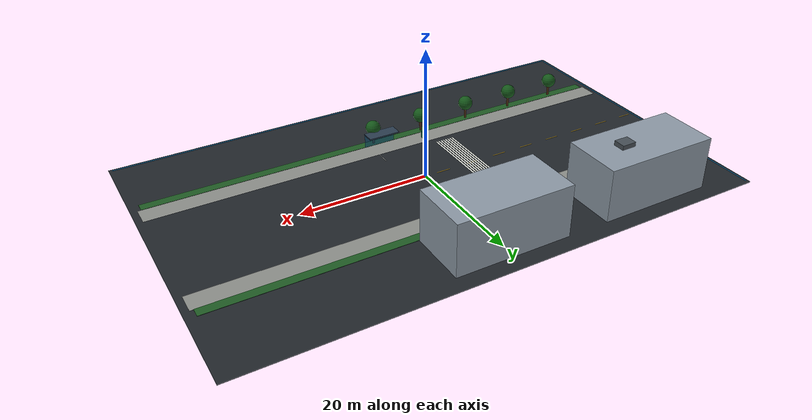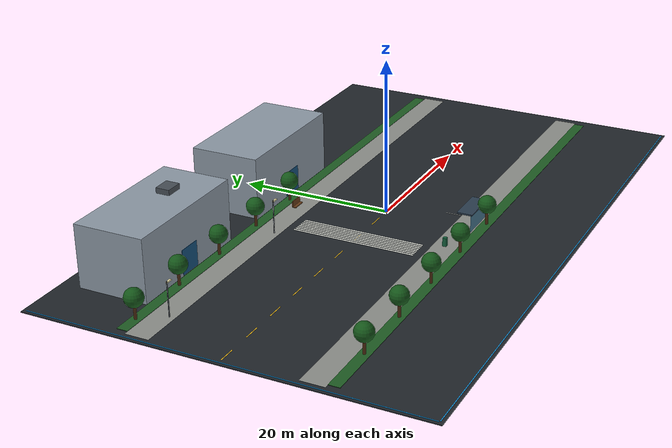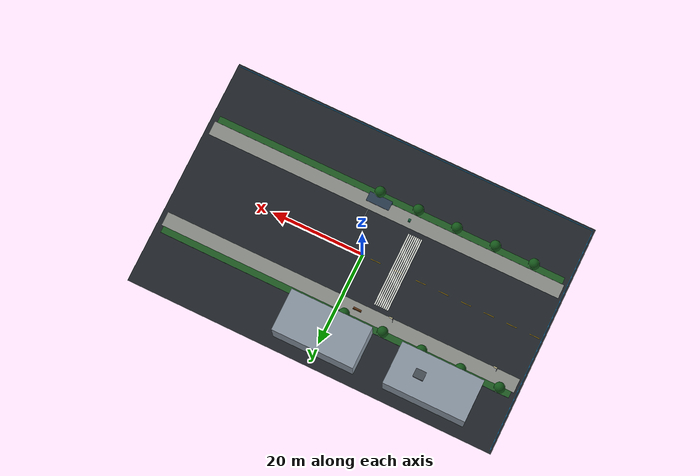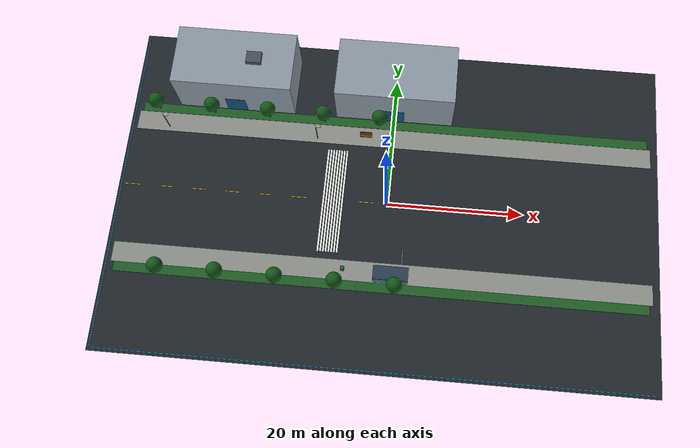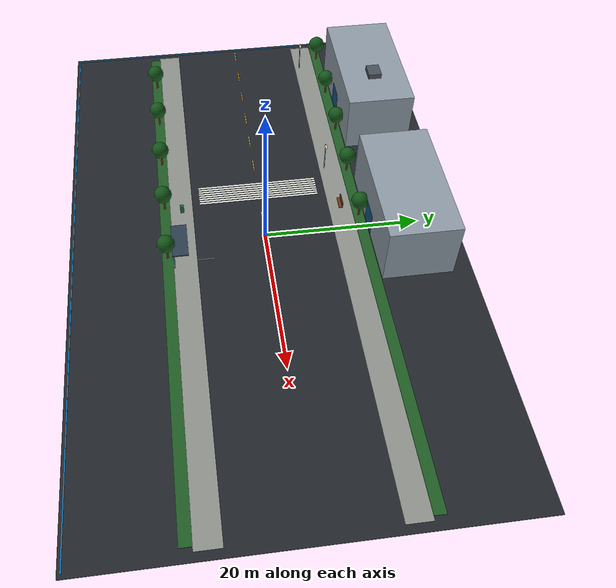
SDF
<sdf version="1.9">
 <world name="sanitation_campus_medium">
  <model name="asphalt_ground">
   <static>true</static>
   <pose>0 0 -0.05 0 0 0</pose>
   <link name="link">
    <collision name="collision"><geometry><box><size>80.0 50.0 0.1</size></box></geometry></collision>
    <visual name="visual">
     <geometry><box><size>80.0 50.0 0.1</size></box></geometry>
     <material>
      <ambient>0.13 0.15 0.17 1</ambient>
      <diffuse>0.13 0.15 0.17 1</diffuse>
      <specular>0.04 0.04 0.04 1</specular>
     </material>
    </visual>
   </link>
  </model>
  <model name="north_sidewalk">
   <static>true</static>
   <pose>0 10.5 0.001 0 0 0</pose>
   <link name="link">
    <visual name="visual">
     <geometry><box><size>78.0 3.0 0.002</size></box></geometry>
     <material>
      <ambient>0.55 0.56 0.54 1</ambient>
      <diffuse>0.55 0.56 0.54 1</diffuse>
      <specular>0.04 0.04 0.04 1</specular>
     </material>
    </visual>
   </link>
  </model>
  <model name="south_sidewalk">
   <static>true</static>
   <pose>0 -10.5 0.001 0 0 0</pose>
   <link name="link">
    <visual name="visual">
     <geometry><box><size>78.0 3.0 0.002</size></box></geometry>
     <material>
      <ambient>0.55 0.56 0.54 1</ambient>
      <diffuse>0.55 0.56 0.54 1</diffuse>
      <specular>0.04 0.04 0.04 1</specular>
     </material>
    </visual>
   </link>
  </model>
  <model name="north_green_verge">
   <static>true</static>
   <pose>0 12.7 0.03 0 0 0</pose>
   <link name="link">
    <visual name="visual">
     <geometry><box><size>77.0 1.4 0.06</size></box></geometry>
     <material>
      <ambient>0.12 0.36 0.14 1</ambient>
      <diffuse>0.12 0.36 0.14 1</diffuse>
      <specular>0.04 0.04 0.04 1</specular>
     </material>
    </visual>
   </link>
  </model>
  <model name="south_green_verge">
   <static>true</static>
   <pose>0 -12.7 0.03 0 0 0</pose>
   <link name="link">
    <visual name="visual">
     <geometry><box><size>77.0 1.4 0.06</size></box></geometry>
     <material>
      <ambient>0.12 0.36 0.14 1</ambient>
      <diffuse>0.12 0.36 0.14 1</diffuse>
      <specular>0.04 0.04 0.04 1</specular>
     </material>
    </visual>
   </link>
  </model>
  <model name="center_dash_00">
   <static>true</static>
   <pose>-38.0 0 0.012 0 0 0</pose>
   <link name="link">
    <visual name="visual">
     <geometry><box><size>2.2 0.12 0.012</size></box></geometry>
     <material>
      <ambient>0.95 0.74 0.10 1</ambient>
      <diffuse>0.95 0.74 0.10 1</diffuse>
      <specular>0.04 0.04 0.04 1</specular>
     </material>
    </visual>
   </link>
  </model>
  <model name="center_dash_01">
   <static>true</static>
   <pose>-33.0 0 0.012 0 0 0</pose>
   <link name="link">
    <visual name="visual">
     <geometry><box><size>2.2 0.12 0.012</size></box></geometry>
     <material>
      <ambient>0.95 0.74 0.10 1</ambient>
      <diffuse>0.95 0.74 0.10 1</diffuse>
      <specular>0.04 0.04 0.04 1</specular>
     </material>
    </visual>
   </link>
  </model>
  <model name="center_dash_02">
   <static>true</static>
   <pose>-28.0 0 0.012 0 0 0</pose>
   <link name="link">
    <visual name="visual">
     <geometry><box><size>2.2 0.12 0.012</size></box></geometry>
     <material>
      <ambient>0.95 0.74 0.10 1</ambient>
      <diffuse>0.95 0.74 0.10 1</diffuse>
      <specular>0.04 0.04 0.04 1</specular>
     </material>
    </visual>
   </link>
  </model>
  <model name="center_dash_03">
   <static>true</static>
   <pose>-23.0 0 0.012 0 0 0</pose>
   <link name="link">
    <visual name="visual">
     <geometry><box><size>2.2 0.12 0.012</size></box></geometry>
     <material>
      <ambient>0.95 0.74 0.10 1</ambient>
      <diffuse>0.95 0.74 0.10 1</diffuse>
      <specular>0.04 0.04 0.04 1</specular>
     </material>
    </visual>
   </link>
  </model>
  <model name="center_dash_04">
   <static>true</static>
   <pose>-18.0 0 0.012 0 0 0</pose>
   <link name="link">
    <visual name="visual">
     <geometry><box><size>2.2 0.12 0.012</size></box></geometry>
     <material>
      <ambient>0.95 0.74 0.10 1</ambient>
      <diffuse>0.95 0.74 0.10 1</diffuse>
      <specular>0.04 0.04 0.04 1</specular>
     </material>
    </visual>
   </link>
  </model>
  <model name="center_dash_05">
   <static>true</static>
   <pose>-13.0 0 0.012 0 0 0</pose>
   <link name="link">
    <visual name="visual">
     <geometry><box><size>2.2 0.12 0.012</size></box></geometry>
     <material>
      <ambient>0.95 0.74 0.10 1</ambient>
      <diffuse>0.95 0.74 0.10 1</diffuse>
      <specular>0.04 0.04 0.04 1</specular>
     </material>
    </visual>
   </link>
  </model>
  <model name="center_dash_06">
   <static>true</static>
   <pose>-8.0 0 0.012 0 0 0</pose>
   <link name="link">
    <visual name="visual">
     <geometry><box><size>2.2 0.12 0.012</size></box></geometry>
     <material>
      <ambient>0.95 0.74 0.10 1</ambient>
      <diffuse>0.95 0.74 0.10 1</diffuse>
      <specular>0.04 0.04 0.04 1</specular>
     </material>
    </visual>
   </link>
  </model>
  <model name="center_dash_07">
   <static>true</static>
   <pose>-3.0 0 0.012 0 0 0</pose>
   <link name="link">
    <visual name="visual">
     <geometry><box><size>2.2 0.12 0.012</size></box></geometry>
     <material>
      <ambient>0.95 0.74 0.10 1</ambient>
      <diffuse>0.95 0.74 0.10 1</diffuse>
      <specular>0.04 0.04 0.04 1</specular>
     </material>
    </visual>
   </link>
  </model>
  <model name="center_dash_08">
   <static>true</static>
   <pose>2.0 0 0.012 0 0 0</pose>
   <link name="link">
    <visual name="visual">
     <geometry><box><size>2.2 0.12 0.012</size></box></geometry>
     <material>
      <ambient>0.95 0.74 0.10 1</ambient>
      <diffuse>0.95 0.74 0.10 1</diffuse>
      <specular>0.04 0.04 0.04 1</specular>
     </material>
    </visual>
   </link>
  </model>
  <model name="crosswalk_00">
   <static>true</static>
   <pose>-9.4 0 0.014 0 0 0</pose>
   <link name="link">
    <visual name="visual">
     <geometry><box><size>0.28 16.0 0.014</size></box></geometry>
     <material>
      <ambient>0.92 0.93 0.90 1</ambient>
      <diffuse>0.92 0.93 0.90 1</diffuse>
      <specular>0.04 0.04 0.04 1</specular>
     </material>
    </visual>
   </link>
  </model>
  <model name="crosswalk_01">
   <static>true</static>
   <pose>-9.0 0 0.014 0 0 0</pose>
   <link name="link">
    <visual name="visual">
     <geometry><box><size>0.28 16.0 0.014</size></box></geometry>
     <material>
      <ambient>0.92 0.93 0.90 1</ambient>
      <diffuse>0.92 0.93 0.90 1</diffuse>
      <specular>0.04 0.04 0.04 1</specular>
     </material>
    </visual>
   </link>
  </model>
  <model name="crosswalk_02">
   <static>true</static>
   <pose>-8.6 0 0.014 0 0 0</pose>
   <link name="link">
    <visual name="visual">
     <geometry><box><size>0.28 16.0 0.014</size></box></geometry>
     <material>
      <ambient>0.92 0.93 0.90 1</ambient>
      <diffuse>0.92 0.93 0.90 1</diffuse>
      <specular>0.04 0.04 0.04 1</specular>
     </material>
    </visual>
   </link>
  </model>
  <model name="crosswalk_03">
   <static>true</static>
   <pose>-8.2 0 0.014 0 0 0</pose>
   <link name="link">
    <visual name="visual">
     <geometry><box><size>0.28 16.0 0.014</size></box></geometry>
     <material>
      <ambient>0.92 0.93 0.90 1</ambient>
      <diffuse>0.92 0.93 0.90 1</diffuse>
      <specular>0.04 0.04 0.04 1</specular>
     </material>
    </visual>
   </link>
  </model>
  <model name="crosswalk_04">
   <static>true</static>
   <pose>-7.8 0 0.014 0 0 0</pose>
   <link name="link">
    <visual name="visual">
     <geometry><box><size>0.28 16.0 0.014</size></box></geometry>
     <material>
      <ambient>0.92 0.93 0.90 1</ambient>
      <diffuse>0.92 0.93 0.90 1</diffuse>
      <specular>0.04 0.04 0.04 1</specular>
     </material>
    </visual>
   </link>
  </model>
  <model name="crosswalk_05">
   <static>true</static>
   <pose>-7.4 0 0.014 0 0 0</pose>
   <link name="link">
    <visual name="visual">
     <geometry><box><size>0.28 16.0 0.014</size></box></geometry>
     <material>
      <ambient>0.92 0.93 0.90 1</ambient>
      <diffuse>0.92 0.93 0.90 1</diffuse>
      <specular>0.04 0.04 0.04 1</specular>
     </material>
    </visual>
   </link>
  </model>
  <model name="crosswalk_06">
   <static>true</static>
   <pose>-7.0 0 0.014 0 0 0</pose>
   <link name="link">
    <visual name="visual">
     <geometry><box><size>0.28 16.0 0.014</size></box></geometry>
     <material>
      <ambient>0.92 0.93 0.90 1</ambient>
      <diffuse>0.92 0.93 0.90 1</diffuse>
      <specular>0.04 0.04 0.04 1</specular>
     </material>
    </visual>
   </link>
  </model>
  <model name="crosswalk_07">
   <static>true</static>
   <pose>-6.6 0 0.014 0 0 0</pose>
   <link name="link">
    <visual name="visual">
     <geometry><box><size>0.28 16.0 0.014</size></box></geometry>
     <material>
      <ambient>0.92 0.93 0.90 1</ambient>
      <diffuse>0.92 0.93 0.90 1</diffuse>
      <specular>0.04 0.04 0.04 1</specular>
     </material>
    </visual>
   </link>
  </model>
  <model name="parking_line_-1_0">
   <static>true</static>
   <pose>3.0 -7.9 0.013 0 0 0</pose>
   <link name="link">
    <visual name="visual">
     <geometry><box><size>0.08 2.2 0.012</size></box></geometry>
     <material>
      <ambient>0.86 0.88 0.86 1</ambient>
      <diffuse>0.86 0.88 0.86 1</diffuse>
      <specular>0.04 0.04 0.04 1</specular>
     </material>
    </visual>
   </link>
  </model>
  <model name="building_north_0">
   <static>true</static>
   <pose>-24.0 18.0 4.0 0 0 0</pose>
   <link name="link">
    <collision name="collision"><geometry><box><size>17.6 9.0 8.0</size></box></geometry></collision>
    <visual name="visual">
     <geometry><box><size>17.6 9.0 8.0</size></box></geometry>
     <material>
      <ambient>0.55 0.60 0.65 1</ambient>
      <diffuse>0.55 0.60 0.65 1</diffuse>
      <specular>0.04 0.04 0.04 1</specular>
     </material>
    </visual>
   </link>
  </model>
  <model name="glass_entry_north_0">
   <static>true</static>
   <pose>-24.0 13.49 1.7 0 0 0</pose>
   <link name="link">
    <visual name="visual">
     <geometry><box><size>3.0 0.08 3.2</size></box></geometry>
     <material>
      <ambient>0.08 0.31 0.48 1</ambient>
      <diffuse>0.08 0.31 0.48 1</diffuse>
      <specular>0.04 0.04 0.04 1</specular>
     </material>
    </visual>
   </link>
  </model>
  <model name="roof_unit_north_0">
   <static>true</static>
   <pose>-21.0 18.0 8.35 0 0 0</pose>
   <link name="link">
    <collision name="collision"><geometry><box><size>2.2 1.8 0.7</size></box></geometry></collision>
    <visual name="visual">
     <geometry><box><size>2.2 1.8 0.7</size></box></geometry>
     <material>
      <ambient>0.28 0.31 0.34 1</ambient>
      <diffuse>0.28 0.31 0.34 1</diffuse>
      <specular>0.04 0.04 0.04 1</specular>
     </material>
    </visual>
   </link>
  </model>
  <model name="building_north_1">
   <static>true</static>
   <pose>0.0 18.0 4.0 0 0 0</pose>
   <link name="link">
    <collision name="collision"><geometry><box><size>17.6 9.0 8.0</size></box></geometry></collision>
    <visual name="visual">
     <geometry><box><size>17.6 9.0 8.0</size></box></geometry>
     <material>
      <ambient>0.55 0.60 0.65 1</ambient>
      <diffuse>0.55 0.60 0.65 1</diffuse>
      <specular>0.04 0.04 0.04 1</specular>
     </material>
    </visual>
   </link>
  </model>
  <model name="glass_entry_north_1">
   <static>true</static>
   <pose>0.0 13.49 1.7 0 0 0</pose>
   <link name="link">
    <visual name="visual">
     <geometry><box><size>3.0 0.08 3.2</size></box></geometry>
     <material>
      <ambient>0.08 0.31 0.48 1</ambient>
      <diffuse>0.08 0.31 0.48 1</diffuse>
      <specular>0.04 0.04 0.04 1</specular>
     </material>
    </visual>
   </link>
  </model>
  <model name="tree_00">
   <static>true</static>
   <pose>-36.0 12.7 0 0 0 0</pose>
   <link name="link">
    <collision name="trunk_collision">
     <geometry><cylinder><radius>0.18</radius><length>2.2</length></cylinder></geometry>
     <pose>0 0 1.1 0 0 0</pose>
    </collision>
    <visual name="trunk">
     <pose>0 0 1.1 0 0 0</pose>
     <geometry><cylinder><radius>0.18</radius><length>2.2</length></cylinder></geometry>
     <material>
      <ambient>0.30 0.17 0.07 1</ambient>
      <diffuse>0.30 0.17 0.07 1</diffuse>
      <specular>0.04 0.04 0.04 1</specular>
     </material>
    </visual>
    <visual name="crown">
     <pose>0 0 2.7 0 0 0</pose>
     <geometry><sphere><radius>1.15</radius></sphere></geometry>
     <material>
      <ambient>0.08 0.34 0.10 1</ambient>
      <diffuse>0.08 0.34 0.10 1</diffuse>
      <specular>0.04 0.04 0.04 1</specular>
     </material>
    </visual>
   </link>
  </model>
  <model name="tree_01">
   <static>true</static>
   <pose>-31.764705882352942 -12.7 0 0 0 0</pose>
   <link name="link">
    <collision name="trunk_collision">
     <geometry><cylinder><radius>0.18</radius><length>2.2</length></cylinder></geometry>
     <pose>0 0 1.1 0 0 0</pose>
    </collision>
    <visual name="trunk">
     <pose>0 0 1.1 0 0 0</pose>
     <geometry><cylinder><radius>0.18</radius><length>2.2</length></cylinder></geometry>
     <material>
      <ambient>0.30 0.17 0.07 1</ambient>
      <diffuse>0.30 0.17 0.07 1</diffuse>
      <specular>0.04 0.04 0.04 1</specular>
     </material>
    </visual>
    <visual name="crown">
     <pose>0 0 2.7 0 0 0</pose>
     <geometry><sphere><radius>1.15</radius></sphere></geometry>
     <material>
      <ambient>0.08 0.34 0.10 1</ambient>
      <diffuse>0.08 0.34 0.10 1</diffuse>
      <specular>0.04 0.04 0.04 1</specular>
     </material>
    </visual>
   </link>
  </model>
  <model name="tree_02">
   <static>true</static>
   <pose>-27.529411764705884 12.7 0 0 0 0</pose>
   <link name="link">
    <collision name="trunk_collision">
     <geometry><cylinder><radius>0.18</radius><length>2.2</length></cylinder></geometry>
     <pose>0 0 1.1 0 0 0</pose>
    </collision>
    <visual name="trunk">
     <pose>0 0 1.1 0 0 0</pose>
     <geometry><cylinder><radius>0.18</radius><length>2.2</length></cylinder></geometry>
     <material>
      <ambient>0.30 0.17 0.07 1</ambient>
      <diffuse>0.30 0.17 0.07 1</diffuse>
      <specular>0.04 0.04 0.04 1</specular>
     </material>
    </visual>
    <visual name="crown">
     <pose>0 0 2.7 0 0 0</pose>
     <geometry><sphere><radius>1.15</radius></sphere></geometry>
     <material>
      <ambient>0.08 0.34 0.10 1</ambient>
      <diffuse>0.08 0.34 0.10 1</diffuse>
      <specular>0.04 0.04 0.04 1</specular>
     </material>
    </visual>
   </link>
  </model>
  <model name="tree_03">
   <static>true</static>
   <pose>-23.294117647058822 -12.7 0 0 0 0</pose>
   <link name="link">
    <collision name="trunk_collision">
     <geometry><cylinder><radius>0.18</radius><length>2.2</length></cylinder></geometry>
     <pose>0 0 1.1 0 0 0</pose>
    </collision>
    <visual name="trunk">
     <pose>0 0 1.1 0 0 0</pose>
     <geometry><cylinder><radius>0.18</radius><length>2.2</length></cylinder></geometry>
     <material>
      <ambient>0.30 0.17 0.07 1</ambient>
      <diffuse>0.30 0.17 0.07 1</diffuse>
      <specular>0.04 0.04 0.04 1</specular>
     </material>
    </visual>
    <visual name="crown">
     <pose>0 0 2.7 0 0 0</pose>
     <geometry><sphere><radius>1.15</radius></sphere></geometry>
     <material>
      <ambient>0.08 0.34 0.10 1</ambient>
      <diffuse>0.08 0.34 0.10 1</diffuse>
      <specular>0.04 0.04 0.04 1</specular>
     </material>
    </visual>
   </link>
  </model>
  <model name="tree_04">
   <static>true</static>
   <pose>-19.058823529411764 12.7 0 0 0 0</pose>
   <link name="link">
    <collision name="trunk_collision">
     <geometry><cylinder><radius>0.18</radius><length>2.2</length></cylinder></geometry>
     <pose>0 0 1.1 0 0 0</pose>
    </collision>
    <visual name="trunk">
     <pose>0 0 1.1 0 0 0</pose>
     <geometry><cylinder><radius>0.18</radius><length>2.2</length></cylinder></geometry>
     <material>
      <ambient>0.30 0.17 0.07 1</ambient>
      <diffuse>0.30 0.17 0.07 1</diffuse>
      <specular>0.04 0.04 0.04 1</specular>
     </material>
    </visual>
    <visual name="crown">
     <pose>0 0 2.7 0 0 0</pose>
     <geometry><sphere><radius>1.15</radius></sphere></geometry>
     <material>
      <ambient>0.08 0.34 0.10 1</ambient>
      <diffuse>0.08 0.34 0.10 1</diffuse>
      <specular>0.04 0.04 0.04 1</specular>
     </material>
    </visual>
   </link>
  </model>
  <model name="tree_05">
   <static>true</static>
   <pose>-14.823529411764707 -12.7 0 0 0 0</pose>
   <link name="link">
    <collision name="trunk_collision">
     <geometry><cylinder><radius>0.18</radius><length>2.2</length></cylinder></geometry>
     <pose>0 0 1.1 0 0 0</pose>
    </collision>
    <visual name="trunk">
     <pose>0 0 1.1 0 0 0</pose>
     <geometry><cylinder><radius>0.18</radius><length>2.2</length></cylinder></geometry>
     <material>
      <ambient>0.30 0.17 0.07 1</ambient>
      <diffuse>0.30 0.17 0.07 1</diffuse>
      <specular>0.04 0.04 0.04 1</specular>
     </material>
    </visual>
    <visual name="crown">
     <pose>0 0 2.7 0 0 0</pose>
     <geometry><sphere><radius>1.15</radius></sphere></geometry>
     <material>
      <ambient>0.08 0.34 0.10 1</ambient>
      <diffuse>0.08 0.34 0.10 1</diffuse>
      <specular>0.04 0.04 0.04 1</specular>
     </material>
    </visual>
   </link>
  </model>
  <model name="tree_06">
   <static>true</static>
   <pose>-10.588235294117645 12.7 0 0 0 0</pose>
   <link name="link">
    <collision name="trunk_collision">
     <geometry><cylinder><radius>0.18</radius><length>2.2</length></cylinder></geometry>
     <pose>0 0 1.1 0 0 0</pose>
    </collision>
    <visual name="trunk">
     <pose>0 0 1.1 0 0 0</pose>
     <geometry><cylinder><radius>0.18</radius><length>2.2</length></cylinder></geometry>
     <material>
      <ambient>0.30 0.17 0.07 1</ambient>
      <diffuse>0.30 0.17 0.07 1</diffuse>
      <specular>0.04 0.04 0.04 1</specular>
     </material>
    </visual>
    <visual name="crown">
     <pose>0 0 2.7 0 0 0</pose>
     <geometry><sphere><radius>1.15</radius></sphere></geometry>
     <material>
      <ambient>0.08 0.34 0.10 1</ambient>
      <diffuse>0.08 0.34 0.10 1</diffuse>
      <specular>0.04 0.04 0.04 1</specular>
     </material>
    </visual>
   </link>
  </model>
  <model name="tree_07">
   <static>true</static>
   <pose>-6.3529411764705905 -12.7 0 0 0 0</pose>
   <link name="link">
    <collision name="trunk_collision">
     <geometry><cylinder><radius>0.18</radius><length>2.2</length></cylinder></geometry>
     <pose>0 0 1.1 0 0 0</pose>
    </collision>
    <visual name="trunk">
     <pose>0 0 1.1 0 0 0</pose>
     <geometry><cylinder><radius>0.18</radius><length>2.2</length></cylinder></geometry>
     <material>
      <ambient>0.30 0.17 0.07 1</ambient>
      <diffuse>0.30 0.17 0.07 1</diffuse>
      <specular>0.04 0.04 0.04 1</specular>
     </material>
    </visual>
    <visual name="crown">
     <pose>0 0 2.7 0 0 0</pose>
     <geometry><sphere><radius>1.15</radius></sphere></geometry>
     <material>
      <ambient>0.08 0.34 0.10 1</ambient>
      <diffuse>0.08 0.34 0.10 1</diffuse>
      <specular>0.04 0.04 0.04 1</specular>
     </material>
    </visual>
   </link>
  </model>
  <model name="tree_08">
   <static>true</static>
   <pose>-2.117647058823529 12.7 0 0 0 0</pose>
   <link name="link">
    <collision name="trunk_collision">
     <geometry><cylinder><radius>0.18</radius><length>2.2</length></cylinder></geometry>
     <pose>0 0 1.1 0 0 0</pose>
    </collision>
    <visual name="trunk">
     <pose>0 0 1.1 0 0 0</pose>
     <geometry><cylinder><radius>0.18</radius><length>2.2</length></cylinder></geometry>
     <material>
      <ambient>0.30 0.17 0.07 1</ambient>
      <diffuse>0.30 0.17 0.07 1</diffuse>
      <specular>0.04 0.04 0.04 1</specular>
     </material>
    </visual>
    <visual name="crown">
     <pose>0 0 2.7 0 0 0</pose>
     <geometry><sphere><radius>1.15</radius></sphere></geometry>
     <material>
      <ambient>0.08 0.34 0.10 1</ambient>
      <diffuse>0.08 0.34 0.10 1</diffuse>
      <specular>0.04 0.04 0.04 1</specular>
     </material>
    </visual>
   </link>
  </model>
  <model name="tree_09">
   <static>true</static>
   <pose>2.117647058823529 -12.7 0 0 0 0</pose>
   <link name="link">
    <collision name="trunk_collision">
     <geometry><cylinder><radius>0.18</radius><length>2.2</length></cylinder></geometry>
     <pose>0 0 1.1 0 0 0</pose>
    </collision>
    <visual name="trunk">
     <pose>0 0 1.1 0 0 0</pose>
     <geometry><cylinder><radius>0.18</radius><length>2.2</length></cylinder></geometry>
     <material>
      <ambient>0.30 0.17 0.07 1</ambient>
      <diffuse>0.30 0.17 0.07 1</diffuse>
      <specular>0.04 0.04 0.04 1</specular>
     </material>
    </visual>
    <visual name="crown">
     <pose>0 0 2.7 0 0 0</pose>
     <geometry><sphere><radius>1.15</radius></sphere></geometry>
     <material>
      <ambient>0.08 0.34 0.10 1</ambient>
      <diffuse>0.08 0.34 0.10 1</diffuse>
      <specular>0.04 0.04 0.04 1</specular>
     </material>
    </visual>
   </link>
  </model>
  <model name="lamp_post_00">
   <static>true</static>
   <pose>-34.0 9.7 2.2 0 0 0</pose>
   <link name="link">
    <collision name="collision">
     <geometry><cylinder><radius>0.07</radius><length>4.4</length></cylinder></geometry>
    </collision>
    <visual name="visual">
     <geometry><cylinder><radius>0.07</radius><length>4.4</length></cylinder></geometry>
     <material>
      <ambient>0.12 0.14 0.16 1</ambient>
      <diffuse>0.12 0.14 0.16 1</diffuse>
      <specular>0.04 0.04 0.04 1</specular>
     </material>
    </visual>
   </link>
  </model>
  <model name="lamp_head_00">
   <static>true</static>
   <pose>-33.65 9.7 4.25 0 0 0</pose>
   <link name="link">
    <visual name="visual">
     <geometry><box><size>0.75 0.22 0.16</size></box></geometry>
     <material>
      <ambient>0.92 0.88 0.66 1</ambient>
      <diffuse>0.92 0.88 0.66 1</diffuse>
      <specular>0.04 0.04 0.04 1</specular>
     </material>
    </visual>
   </link>
  </model>
  <model name="lamp_post_01">
   <static>true</static>
   <pose>-11.333333333333332 9.7 2.2 0 0 0</pose>
   <link name="link">
    <collision name="collision">
     <geometry><cylinder><radius>0.07</radius><length>4.4</length></cylinder></geometry>
    </collision>
    <visual name="visual">
     <geometry><cylinder><radius>0.07</radius><length>4.4</length></cylinder></geometry>
     <material>
      <ambient>0.12 0.14 0.16 1</ambient>
      <diffuse>0.12 0.14 0.16 1</diffuse>
      <specular>0.04 0.04 0.04 1</specular>
     </material>
    </visual>
   </link>
  </model>
  <model name="lamp_head_01">
   <static>true</static>
   <pose>-10.983333333333333 9.7 4.25 0 0 0</pose>
   <link name="link">
    <visual name="visual">
     <geometry><box><size>0.75 0.22 0.16</size></box></geometry>
     <material>
      <ambient>0.92 0.88 0.66 1</ambient>
      <diffuse>0.92 0.88 0.66 1</diffuse>
      <specular>0.04 0.04 0.04 1</specular>
     </material>
    </visual>
   </link>
  </model>
  <model name="bench_seat_0">
   <static>true</static>
   <pose>-4.0 10.5 0.55 0 0 0</pose>
   <link name="link">
    <collision name="collision"><geometry><box><size>1.8 0.48 0.12</size></box></geometry></collision>
    <visual name="visual">
     <geometry><box><size>1.8 0.48 0.12</size></box></geometry>
     <material>
      <ambient>0.40 0.23 0.09 1</ambient>
      <diffuse>0.40 0.23 0.09 1</diffuse>
      <specular>0.04 0.04 0.04 1</specular>
     </material>
    </visual>
   </link>
  </model>
  <model name="bench_back_0">
   <static>true</static>
   <pose>-4.0 10.72 0.95 0 0 0</pose>
   <link name="link">
    <collision name="collision"><geometry><box><size>1.8 0.1 0.75</size></box></geometry></collision>
    <visual name="visual">
     <geometry><box><size>1.8 0.1 0.75</size></box></geometry>
     <material>
      <ambient>0.40 0.23 0.09 1</ambient>
      <diffuse>0.40 0.23 0.09 1</diffuse>
      <specular>0.04 0.04 0.04 1</specular>
     </material>
    </visual>
   </link>
  </model>
  <model name="waste_bin_0">
   <static>true</static>
   <pose>-5.5 -10.4 0.55 0 0 0</pose>
   <link name="link">
    <collision name="collision"><geometry><box><size>0.48 0.48 1.1</size></box></geometry></collision>
    <visual name="visual">
     <geometry><box><size>0.48 0.48 1.1</size></box></geometry>
     <material>
      <ambient>0.08 0.38 0.24 1</ambient>
      <diffuse>0.08 0.38 0.24 1</diffuse>
      <specular>0.04 0.04 0.04 1</specular>
     </material>
    </visual>
   </link>
  </model>
  <model name="bus_shelter_roof">
   <static>true</static>
   <pose>1.5 -11.0 2.35 0 0 0</pose>
   <link name="link">
    <collision name="collision"><geometry><box><size>5.0 2.0 0.18</size></box></geometry></collision>
    <visual name="visual">
     <geometry><box><size>5.0 2.0 0.18</size></box></geometry>
     <material>
      <ambient>0.17 0.24 0.31 1</ambient>
      <diffuse>0.17 0.24 0.31 1</diffuse>
      <specular>0.04 0.04 0.04 1</specular>
     </material>
    </visual>
   </link>
  </model>
  <model name="bus_shelter_glass">
   <static>true</static>
   <pose>1.5 -11.85 1.25 0 0 0</pose>
   <link name="link">
    <visual name="visual">
     <geometry><box><size>5.0 0.08 2.2</size></box></geometry>
     <material>
      <ambient>0.12 0.38 0.52 0.72</ambient>
      <diffuse>0.12 0.38 0.52 0.72</diffuse>
      <specular>0.04 0.04 0.04 1</specular>
     </material>
    </visual>
   </link>
  </model>
  <model name="dimension_x_bar">
   <static>true</static>
   <pose>0 -24.6 0.03 0 0 0</pose>
   <link name="link">
    <visual name="visual">
     <geometry><box><size>79.0 0.1 0.06</size></box></geometry>
     <material>
      <ambient>0.10 0.62 0.92 1</ambient>
      <diffuse>0.10 0.62 0.92 1</diffuse>
      <specular>0.04 0.04 0.04 1</specular>
     </material>
    </visual>
   </link>
  </model>
  <model name="dimension_y_bar">
   <static>true</static>
   <pose>-39.6 0 0.03 0 0 0</pose>
   <link name="link">
    <visual name="visual">
     <geometry><box><size>0.1 49.0 0.06</size></box></geometry>
     <material>
      <ambient>0.10 0.62 0.92 1</ambient>
      <diffuse>0.10 0.62 0.92 1</diffuse>
      <specular>0.04 0.04 0.04 1</specular>
     </material>
    </visual>
   </link>
  </model>
 </world>
</sdf>
